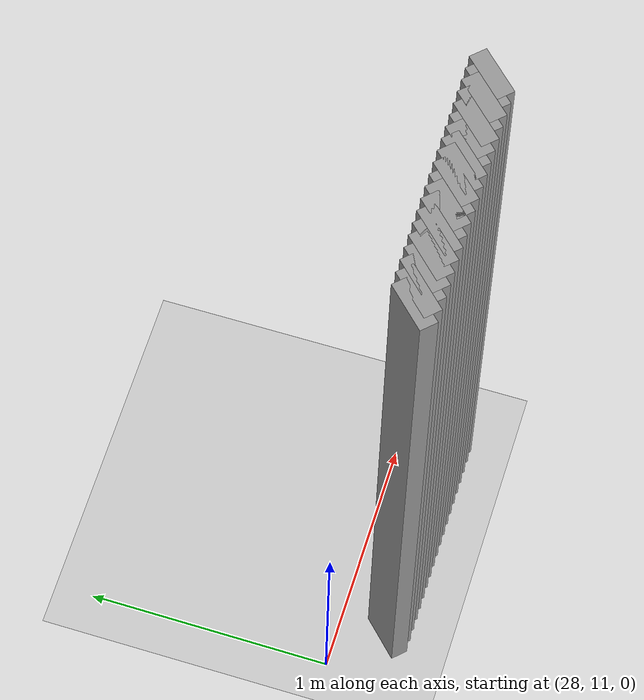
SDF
<sdf version="1.5">
 <world name="default">
  <include><uri>model://ground_plane</uri></include>
  <include><uri>model://sun</uri></include>
  <model name="grey_wall_2993">
   <static>1</static>
   <link name="link">
    <pose>28.2 10.8  1.4 0 0 -0.785398163397</pose>
    <collision name="collision"><geometry><box><size>0.0707106781187 .2  2.8</size></box></geometry></collision>
    <visual name="visual">
     <cast_shadows>0</cast_shadows>
     <geometry><box><size>0.0707106781187 .2  2.8</size></box></geometry>
     <material>
      <script>
       <uri>model://grey_wall/materials/scripts</uri>
       <uri>model://grey_wall/materials/textures</uri>
       <name>vrc/grey_wall</name>
      </script>
     </material>
    </visual>
   </link>
  </model>
  <model name="grey_wall_2994">
   <static>1</static>
   <link name="link">
    <pose>28.25 10.8  1.4 0 0 -0.785398163397</pose>
    <collision name="collision"><geometry><box><size>0.0707106781187 .2  2.8</size></box></geometry></collision>
    <visual name="visual">
     <cast_shadows>0</cast_shadows>
     <geometry><box><size>0.0707106781187 .2  2.8</size></box></geometry>
     <material>
      <script>
       <uri>model://grey_wall/materials/scripts</uri>
       <uri>model://grey_wall/materials/textures</uri>
       <name>vrc/grey_wall</name>
      </script>
     </material>
    </visual>
   </link>
  </model>
  <model name="grey_wall_2995">
   <static>1</static>
   <link name="link">
    <pose>28.3 10.8  1.4 0 0 -0.785398163397</pose>
    <collision name="collision"><geometry><box><size>0.0707106781187 .2  2.8</size></box></geometry></collision>
    <visual name="visual">
     <cast_shadows>0</cast_shadows>
     <geometry><box><size>0.0707106781187 .2  2.8</size></box></geometry>
     <material>
      <script>
       <uri>model://grey_wall/materials/scripts</uri>
       <uri>model://grey_wall/materials/textures</uri>
       <name>vrc/grey_wall</name>
      </script>
     </material>
    </visual>
   </link>
  </model>
  <model name="grey_wall_2996">
   <static>1</static>
   <link name="link">
    <pose>28.35 10.8  1.4 0 0 -0.785398163397</pose>
    <collision name="collision"><geometry><box><size>0.0707106781187 .2  2.8</size></box></geometry></collision>
    <visual name="visual">
     <cast_shadows>0</cast_shadows>
     <geometry><box><size>0.0707106781187 .2  2.8</size></box></geometry>
     <material>
      <script>
       <uri>model://grey_wall/materials/scripts</uri>
       <uri>model://grey_wall/materials/textures</uri>
       <name>vrc/grey_wall</name>
      </script>
     </material>
    </visual>
   </link>
  </model>
  <model name="grey_wall_2997">
   <static>1</static>
   <link name="link">
    <pose>28.4 10.8  1.4 0 0 -0.785398163397</pose>
    <collision name="collision"><geometry><box><size>0.0707106781187 .2  2.8</size></box></geometry></collision>
    <visual name="visual">
     <cast_shadows>0</cast_shadows>
     <geometry><box><size>0.0707106781187 .2  2.8</size></box></geometry>
     <material>
      <script>
       <uri>model://grey_wall/materials/scripts</uri>
       <uri>model://grey_wall/materials/textures</uri>
       <name>vrc/grey_wall</name>
      </script>
     </material>
    </visual>
   </link>
  </model>
  <model name="grey_wall_2998">
   <static>1</static>
   <link name="link">
    <pose>28.45 10.8  1.4 0 0 -0.785398163397</pose>
    <collision name="collision"><geometry><box><size>0.0707106781187 .2  2.8</size></box></geometry></collision>
    <visual name="visual">
     <cast_shadows>0</cast_shadows>
     <geometry><box><size>0.0707106781187 .2  2.8</size></box></geometry>
     <material>
      <script>
       <uri>model://grey_wall/materials/scripts</uri>
       <uri>model://grey_wall/materials/textures</uri>
       <name>vrc/grey_wall</name>
      </script>
     </material>
    </visual>
   </link>
  </model>
  <model name="grey_wall_2999">
   <static>1</static>
   <link name="link">
    <pose>28.5 10.8  1.4 0 0 -0.785398163397</pose>
    <collision name="collision"><geometry><box><size>0.0707106781187 .2  2.8</size></box></geometry></collision>
    <visual name="visual">
     <cast_shadows>0</cast_shadows>
     <geometry><box><size>0.0707106781187 .2  2.8</size></box></geometry>
     <material>
      <script>
       <uri>model://grey_wall/materials/scripts</uri>
       <uri>model://grey_wall/materials/textures</uri>
       <name>vrc/grey_wall</name>
      </script>
     </material>
    </visual>
   </link>
  </model>
  <model name="grey_wall_3000">
   <static>1</static>
   <link name="link">
    <pose>28.55 10.8  1.4 0 0 -0.785398163397</pose>
    <collision name="collision"><geometry><box><size>0.0707106781187 .2  2.8</size></box></geometry></collision>
    <visual name="visual">
     <cast_shadows>0</cast_shadows>
     <geometry><box><size>0.0707106781187 .2  2.8</size></box></geometry>
     <material>
      <script>
       <uri>model://grey_wall/materials/scripts</uri>
       <uri>model://grey_wall/materials/textures</uri>
       <name>vrc/grey_wall</name>
      </script>
     </material>
    </visual>
   </link>
  </model>
  <model name="grey_wall_3001">
   <static>1</static>
   <link name="link">
    <pose>28.6 10.8  1.4 0 0 -0.785398163397</pose>
    <collision name="collision"><geometry><box><size>0.0707106781187 .2  2.8</size></box></geometry></collision>
    <visual name="visual">
     <cast_shadows>0</cast_shadows>
     <geometry><box><size>0.0707106781187 .2  2.8</size></box></geometry>
     <material>
      <script>
       <uri>model://grey_wall/materials/scripts</uri>
       <uri>model://grey_wall/materials/textures</uri>
       <name>vrc/grey_wall</name>
      </script>
     </material>
    </visual>
   </link>
  </model>
  <model name="grey_wall_3002">
   <static>1</static>
   <link name="link">
    <pose>28.65 10.8  1.4 0 0 -0.785398163397</pose>
    <collision name="collision"><geometry><box><size>0.0707106781187 .2  2.8</size></box></geometry></collision>
    <visual name="visual">
     <cast_shadows>0</cast_shadows>
     <geometry><box><size>0.0707106781187 .2  2.8</size></box></geometry>
     <material>
      <script>
       <uri>model://grey_wall/materials/scripts</uri>
       <uri>model://grey_wall/materials/textures</uri>
       <name>vrc/grey_wall</name>
      </script>
     </material>
    </visual>
   </link>
  </model>
  <model name="grey_wall_3003">
   <static>1</static>
   <link name="link">
    <pose>28.7 10.8  1.4 0 0 -0.785398163397</pose>
    <collision name="collision"><geometry><box><size>0.0707106781187 .2  2.8</size></box></geometry></collision>
    <visual name="visual">
     <cast_shadows>0</cast_shadows>
     <geometry><box><size>0.0707106781187 .2  2.8</size></box></geometry>
     <material>
      <script>
       <uri>model://grey_wall/materials/scripts</uri>
       <uri>model://grey_wall/materials/textures</uri>
       <name>vrc/grey_wall</name>
      </script>
     </material>
    </visual>
   </link>
  </model>
  <model name="grey_wall_3004">
   <static>1</static>
   <link name="link">
    <pose>28.75 10.8  1.4 0 0 -0.785398163397</pose>
    <collision name="collision"><geometry><box><size>0.0707106781187 .2  2.8</size></box></geometry></collision>
    <visual name="visual">
     <cast_shadows>0</cast_shadows>
     <geometry><box><size>0.0707106781187 .2  2.8</size></box></geometry>
     <material>
      <script>
       <uri>model://grey_wall/materials/scripts</uri>
       <uri>model://grey_wall/materials/textures</uri>
       <name>vrc/grey_wall</name>
      </script>
     </material>
    </visual>
   </link>
  </model>
  <model name="grey_wall_3005">
   <static>1</static>
   <link name="link">
    <pose>28.8 10.8  1.4 0 0 -0.785398163397</pose>
    <collision name="collision"><geometry><box><size>0.0707106781187 .2  2.8</size></box></geometry></collision>
    <visual name="visual">
     <cast_shadows>0</cast_shadows>
     <geometry><box><size>0.0707106781187 .2  2.8</size></box></geometry>
     <material>
      <script>
       <uri>model://grey_wall/materials/scripts</uri>
       <uri>model://grey_wall/materials/textures</uri>
       <name>vrc/grey_wall</name>
      </script>
     </material>
    </visual>
   </link>
  </model>
  <model name="grey_wall_3006">
   <static>1</static>
   <link name="link">
    <pose>28.85 10.8  1.4 0 0 -0.785398163397</pose>
    <collision name="collision"><geometry><box><size>0.0707106781187 .2  2.8</size></box></geometry></collision>
    <visual name="visual">
     <cast_shadows>0</cast_shadows>
     <geometry><box><size>0.0707106781187 .2  2.8</size></box></geometry>
     <material>
      <script>
       <uri>model://grey_wall/materials/scripts</uri>
       <uri>model://grey_wall/materials/textures</uri>
       <name>vrc/grey_wall</name>
      </script>
     </material>
    </visual>
   </link>
  </model>
  <model name="grey_wall_3007">
   <static>1</static>
   <link name="link">
    <pose>28.9 10.8  1.4 0 0 -0.785398163397</pose>
    <collision name="collision"><geometry><box><size>0.0707106781187 .2  2.8</size></box></geometry></collision>
    <visual name="visual">
     <cast_shadows>0</cast_shadows>
     <geometry><box><size>0.0707106781187 .2  2.8</size></box></geometry>
     <material>
      <script>
       <uri>model://grey_wall/materials/scripts</uri>
       <uri>model://grey_wall/materials/textures</uri>
       <name>vrc/grey_wall</name>
      </script>
     </material>
    </visual>
   </link>
  </model>
  <model name="grey_wall_3008">
   <static>1</static>
   <link name="link">
    <pose>28.95 10.8  1.4 0 0 -0.785398163397</pose>
    <collision name="collision"><geometry><box><size>0.0707106781187 .2  2.8</size></box></geometry></collision>
    <visual name="visual">
     <cast_shadows>0</cast_shadows>
     <geometry><box><size>0.0707106781187 .2  2.8</size></box></geometry>
     <material>
      <script>
       <uri>model://grey_wall/materials/scripts</uri>
       <uri>model://grey_wall/materials/textures</uri>
       <name>vrc/grey_wall</name>
      </script>
     </material>
    </visual>
   </link>
  </model>
  <model name="grey_wall_3009">
   <static>1</static>
   <link name="link">
    <pose>29.0 10.8  1.4 0 0 -0.785398163397</pose>
    <collision name="collision"><geometry><box><size>0.0707106781187 .2  2.8</size></box></geometry></collision>
    <visual name="visual">
     <cast_shadows>0</cast_shadows>
     <geometry><box><size>0.0707106781187 .2  2.8</size></box></geometry>
     <material>
      <script>
       <uri>model://grey_wall/materials/scripts</uri>
       <uri>model://grey_wall/materials/textures</uri>
       <name>vrc/grey_wall</name>
      </script>
     </material>
    </visual>
   </link>
  </model>
  <model name="grey_wall_3010">
   <static>1</static>
   <link name="link">
    <pose>29.05 10.8  1.4 0 0 -0.785398163397</pose>
    <collision name="collision"><geometry><box><size>0.0707106781187 .2  2.8</size></box></geometry></collision>
    <visual name="visual">
     <cast_shadows>0</cast_shadows>
     <geometry><box><size>0.0707106781187 .2  2.8</size></box></geometry>
     <material>
      <script>
       <uri>model://grey_wall/materials/scripts</uri>
       <uri>model://grey_wall/materials/textures</uri>
       <name>vrc/grey_wall</name>
      </script>
     </material>
    </visual>
   </link>
  </model>
  <model name="grey_wall_3011">
   <static>1</static>
   <link name="link">
    <pose>29.1 10.8  1.4 0 0 -0.785398163397</pose>
    <collision name="collision"><geometry><box><size>0.0707106781187 .2  2.8</size></box></geometry></collision>
    <visual name="visual">
     <cast_shadows>0</cast_shadows>
     <geometry><box><size>0.0707106781187 .2  2.8</size></box></geometry>
     <material>
      <script>
       <uri>model://grey_wall/materials/scripts</uri>
       <uri>model://grey_wall/materials/textures</uri>
       <name>vrc/grey_wall</name>
      </script>
     </material>
    </visual>
   </link>
  </model>
  <model name="grey_wall_3012">
   <static>1</static>
   <link name="link">
    <pose>29.15 10.8  1.4 0 0 -0.785398163397</pose>
    <collision name="collision"><geometry><box><size>0.0707106781187 .2  2.8</size></box></geometry></collision>
    <visual name="visual">
     <cast_shadows>0</cast_shadows>
     <geometry><box><size>0.0707106781187 .2  2.8</size></box></geometry>
     <material>
      <script>
       <uri>model://grey_wall/materials/scripts</uri>
       <uri>model://grey_wall/materials/textures</uri>
       <name>vrc/grey_wall</name>
      </script>
     </material>
    </visual>
   </link>
  </model>
 </world>
</sdf>
